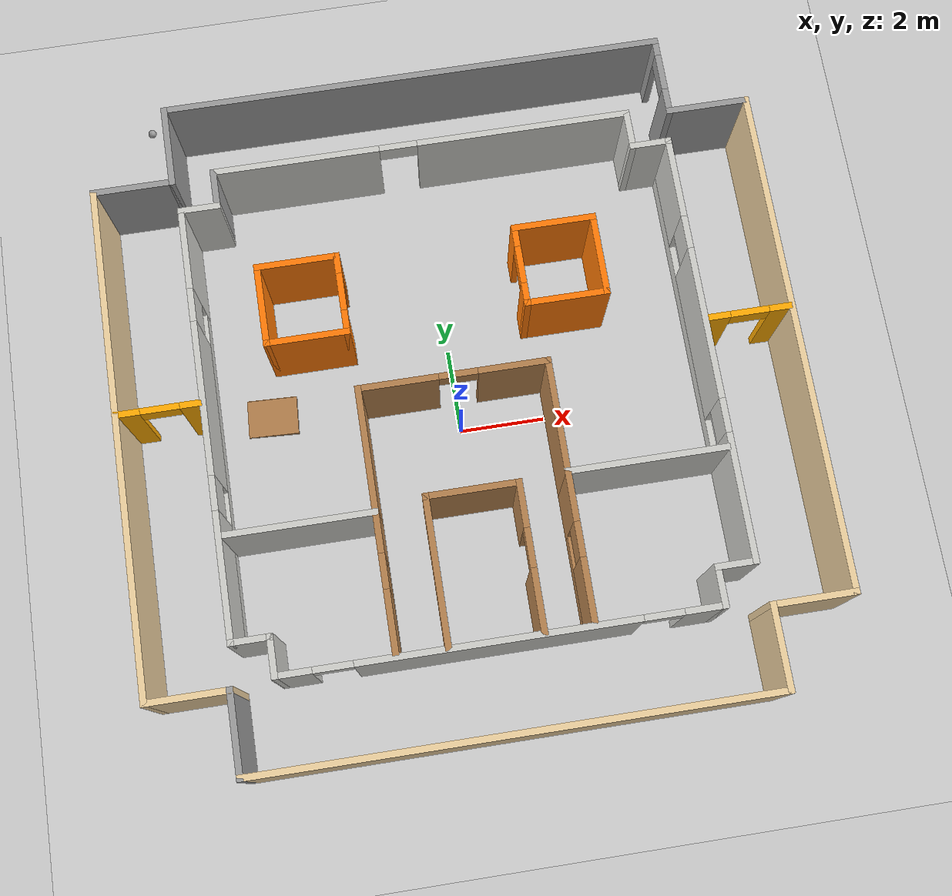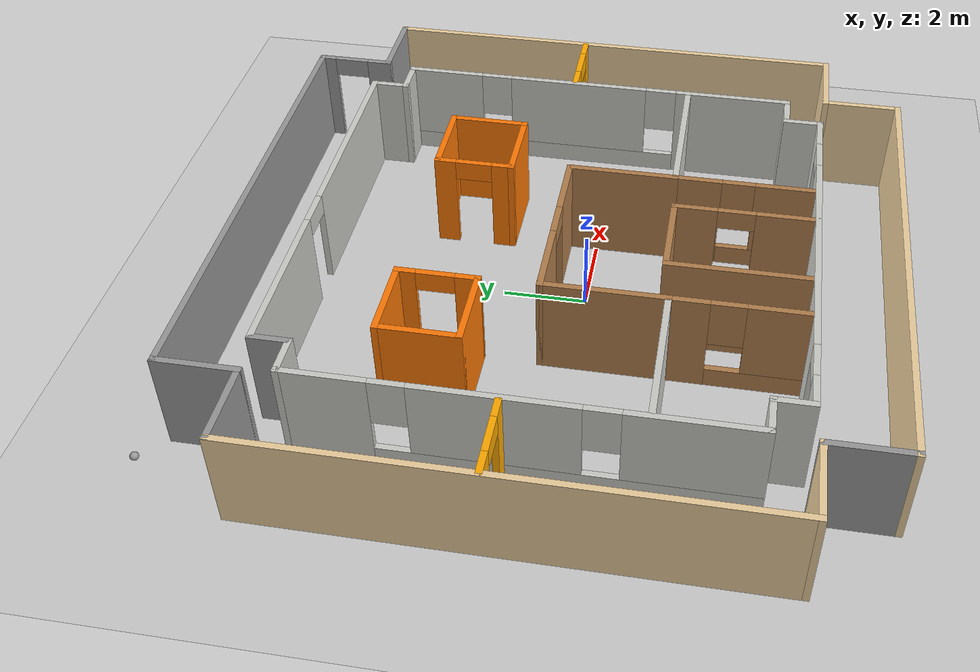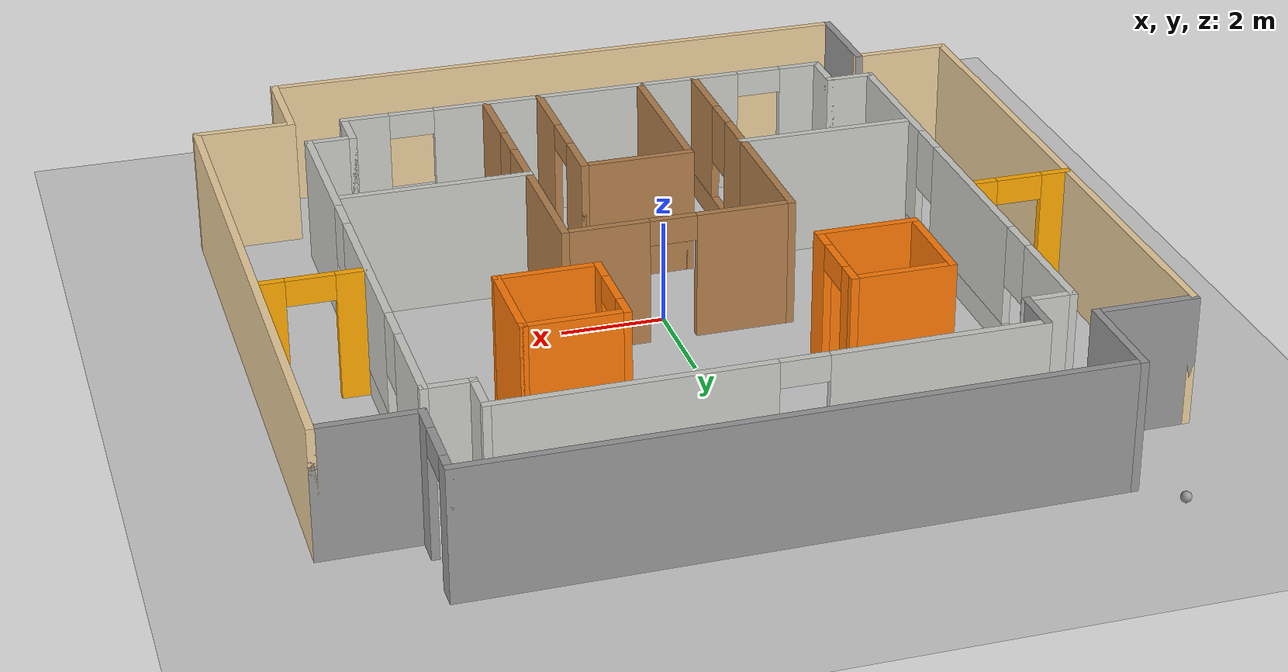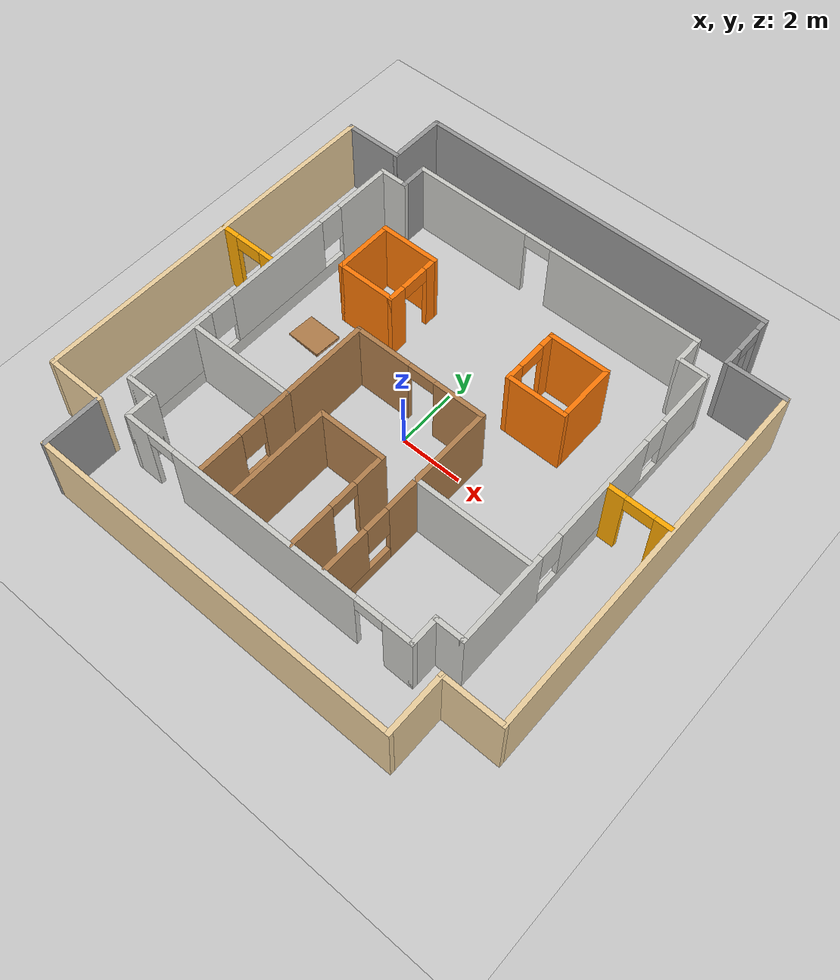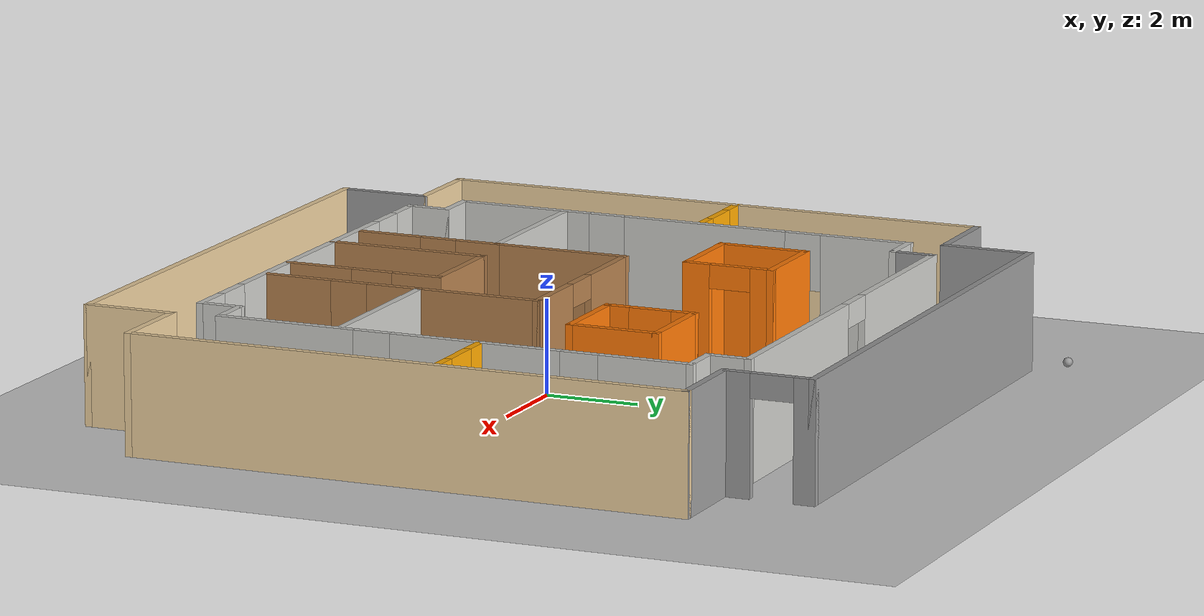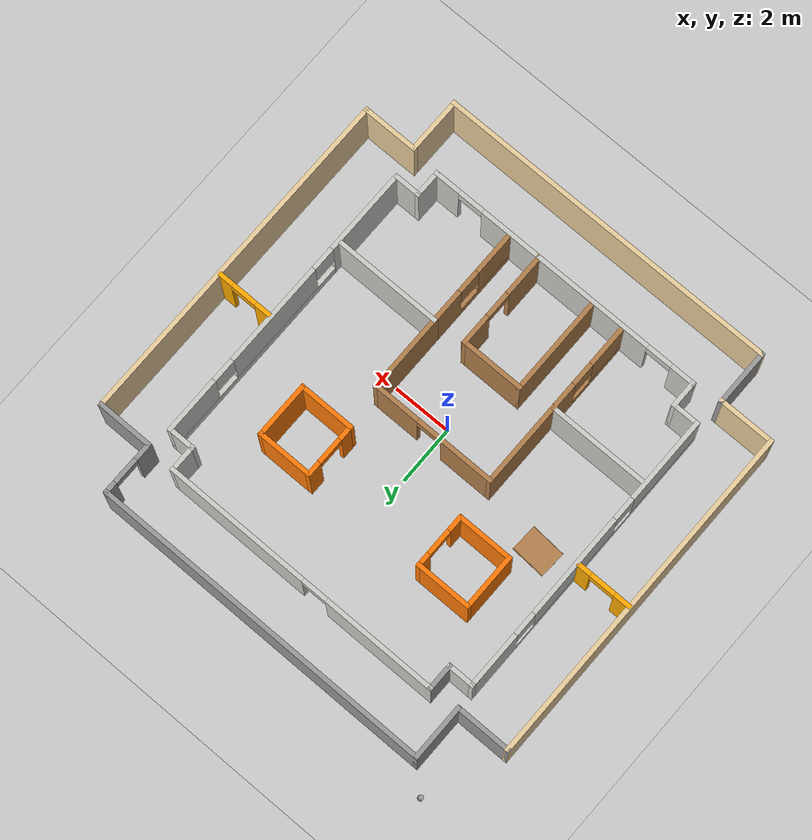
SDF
<sdf version="1.6">
 <world name="default">
  <plugin name="hello_world" filename="libhello_world.so"/>
  <light name="sun" type="directional">
   <pose>0 0 10 0 -0 0</pose>
   <diffuse>0.8 0.8 0.8 1</diffuse>
   <specular>0.2 0.2 0.2 1</specular>
   <attenuation>
    <range>1000</range>
    <constant>0.9</constant>
    <linear>0.01</linear>
    <quadratic>0.001</quadratic>
   </attenuation>
   <direction>-0.5 0.1 -0.9</direction>
  </light>
  <model name="ground_plane">
   <static>1</static>
   <link name="link">
    <collision name="collision">
     <geometry><plane><normal>0 0 1</normal><size>100 100</size></plane></geometry>
     <surface><friction><ode><mu>100</mu><mu2>50</mu2></ode></friction></surface>
    </collision>
    <visual name="visual">
     <cast_shadows>0</cast_shadows>
     <geometry><plane><normal>0 0 1</normal><size>100 100</size></plane></geometry>
     <material>
      <script><uri>file://media/materials/scripts/gazebo.material</uri><name>Gazebo/Grey</name></script>
     </material>
    </visual>
   </link>
  </model>
  <gravity>0 0 -9.8</gravity>
  <magnetic_field>6e-06 2.3e-05 -4.2e-05</magnetic_field>
  <atmosphere type="adiabatic"/>
  <physics name="default_physics" default="0" type="ode">
   <max_step_size>0.001</max_step_size>
   <real_time_factor>1</real_time_factor>
   <real_time_update_rate>1000</real_time_update_rate>
  </physics>
  <scene><ambient>0.4 0.4 0.4 1</ambient><background>0.7 0.7 0.7 1</background><shadows>1</shadows></scene>
  <spherical_coordinates>
   <surface_model>EARTH_WGS84</surface_model>
   <latitude_deg>0</latitude_deg>
   <longitude_deg>0</longitude_deg>
   <elevation>0</elevation>
   <heading_deg>0</heading_deg>
  </spherical_coordinates>
  <model name="Building_Design">
   <pose>0.072259 0.45547 0 0 -0 0</pose>
   <link name="Wall_10">
    <collision name="Wall_10_Collision">
     <geometry><box><size>12 0.15 2.5</size></box></geometry>
     <pose>0 0 1.25 0 -0 0</pose>
    </collision>
    <visual name="Wall_10_Visual">
     <pose>0 0 1.25 0 -0 0</pose>
     <geometry><box><size>12 0.15 2.5</size></box></geometry>
     <material>
      <script><uri>file://media/materials/scripts/gazebo.material</uri><name>Gazebo/Grey</name></script>
      <ambient>0 0 0 1</ambient>
     </material>
     <meta><layer>0</layer></meta>
    </visual>
    <pose>0 7.775 0 0 -0 0</pose>
   </link>
   <link name="Wall_11">
    <pose>5.925 6.85 0 0 0 -1.5708</pose>
    <visual name="Wall_11_Visual_0">
     <pose>-0.772823 0 1.25 0 -0 0</pose>
     <geometry><box><size>0.454353 0.15 2.5</size></box></geometry>
     <material>
      <script><uri>file://media/materials/scripts/gazebo.material</uri><name>Gazebo/Grey</name></script>
      <ambient>0 0 0 1</ambient>
     </material>
     <meta><layer>0</layer></meta>
    </visual>
    <collision name="Wall_11_Collision_0">
     <geometry><box><size>0.454353 0.15 2.5</size></box></geometry>
     <pose>-0.772823 0 1.25 0 -0 0</pose>
    </collision>
    <visual name="Wall_11_Visual_1">
     <pose>0.677177 0 1.25 0 -0 0</pose>
     <geometry><box><size>0.645647 0.15 2.5</size></box></geometry>
     <material>
      <script><uri>file://media/materials/scripts/gazebo.material</uri><name>Gazebo/Grey</name></script>
      <ambient>0 0 0 1</ambient>
     </material>
     <meta><layer>0</layer></meta>
    </visual>
    <collision name="Wall_11_Collision_1">
     <geometry><box><size>0.645647 0.15 2.5</size></box></geometry>
     <pose>0.677177 0 1.25 0 -0 0</pose>
    </collision>
    <visual name="Wall_11_Visual_2">
     <pose>-0.095647 0 2.25 0 -0 0</pose>
     <geometry><box><size>0.9 0.15 0.5</size></box></geometry>
     <material>
      <script><uri>file://media/materials/scripts/gazebo.material</uri><name>Gazebo/Grey</name></script>
      <ambient>0 0 0 1</ambient>
     </material>
     <meta><layer>0</layer></meta>
    </visual>
    <collision name="Wall_11_Collision_2">
     <geometry><box><size>0.9 0.15 0.5</size></box></geometry>
     <pose>-0.095647 0 2.25 0 -0 0</pose>
    </collision>
   </link>
   <link name="Wall_12">
    <collision name="Wall_12_Collision">
     <geometry><box><size>2 0.15 2.5</size></box></geometry>
     <pose>0 0 1.25 0 -0 0</pose>
    </collision>
    <visual name="Wall_12_Visual">
     <pose>0 0 1.25 0 -0 0</pose>
     <geometry><box><size>2 0.15 2.5</size></box></geometry>
     <material>
      <script><uri>file://media/materials/scripts/gazebo.material</uri><name>Gazebo/Grey</name></script>
      <ambient>0 0 0 1</ambient>
     </material>
     <meta><layer>0</layer></meta>
    </visual>
    <pose>6.85 5.925 0 0 -0 0</pose>
   </link>
   <link name="Wall_15">
    <collision name="Wall_15_Collision">
     <geometry><box><size>12 0.15 2.5</size></box></geometry>
     <pose>0 0 1.25 0 -0 0</pose>
    </collision>
    <visual name="Wall_15_Visual">
     <pose>0 0 1.25 0 -0 0</pose>
     <geometry><box><size>12 0.15 2.5</size></box></geometry>
     <material>
      <script><uri>file://media/materials/scripts/gazebo.material</uri><name>Gazebo/Grey</name></script>
      <ambient>0.921569 0.807843 0.615686 1</ambient>
     </material>
     <meta><layer>0</layer></meta>
    </visual>
    <pose>7.775 0 0 0 0 -1.5708</pose>
   </link>
   <link name="Wall_16">
    <collision name="Wall_16_Collision">
     <geometry><box><size>2 0.15 2.5</size></box></geometry>
     <pose>0 0 1.25 0 -0 0</pose>
    </collision>
    <visual name="Wall_16_Visual">
     <pose>0 0 1.25 0 -0 0</pose>
     <geometry><box><size>2 0.15 2.5</size></box></geometry>
     <material>
      <script><uri>file://media/materials/scripts/gazebo.material</uri><name>Gazebo/Grey</name></script>
      <ambient>0.921569 0.807843 0.615686 1</ambient>
     </material>
     <meta><layer>0</layer></meta>
    </visual>
    <pose>6.85 -5.925 0 0 -0 3.14159</pose>
   </link>
   <link name="Wall_18">
    <collision name="Wall_18_Collision">
     <geometry><box><size>2 0.15 2.5</size></box></geometry>
     <pose>0 0 1.25 0 -0 0</pose>
    </collision>
    <visual name="Wall_18_Visual">
     <pose>0 0 1.25 0 -0 0</pose>
     <geometry><box><size>2 0.15 2.5</size></box></geometry>
     <material>
      <script><uri>file://media/materials/scripts/gazebo.material</uri><name>Gazebo/Grey</name></script>
      <ambient>0.921569 0.807843 0.615686 1</ambient>
     </material>
     <meta><layer>0</layer></meta>
    </visual>
    <pose>5.925 -6.85 0 0 0 -1.5708</pose>
   </link>
   <link name="Wall_19">
    <collision name="Wall_19_Collision">
     <geometry><box><size>12 0.15 2.5</size></box></geometry>
     <pose>0 0 1.25 0 -0 0</pose>
    </collision>
    <visual name="Wall_19_Visual">
     <pose>0 0 1.25 0 -0 0</pose>
     <geometry><box><size>12 0.15 2.5</size></box></geometry>
     <material>
      <script><uri>file://media/materials/scripts/gazebo.material</uri><name>Gazebo/Grey</name></script>
      <ambient>0.921569 0.807843 0.615686 1</ambient>
     </material>
     <meta><layer>0</layer></meta>
    </visual>
    <pose>0 -7.775 0 0 -0 3.14159</pose>
   </link>
   <link name="Wall_20">
    <collision name="Wall_20_Collision">
     <geometry><box><size>2 0.15 2.5</size></box></geometry>
     <pose>0 0 1.25 0 -0 0</pose>
    </collision>
    <visual name="Wall_20_Visual">
     <pose>0 0 1.25 0 -0 0</pose>
     <geometry><box><size>2 0.15 2.5</size></box></geometry>
     <material>
      <script><uri>file://media/materials/scripts/gazebo.material</uri><name>Gazebo/Grey</name></script>
      <ambient>1 1 1 1</ambient>
     </material>
     <meta><layer>0</layer></meta>
    </visual>
    <pose>-5.925 -6.85 0 0 -0 1.5708</pose>
   </link>
   <link name="Wall_21">
    <collision name="Wall_21_Collision">
     <geometry><box><size>2 0.15 2.5</size></box></geometry>
     <pose>0 0 1.25 0 -0 0</pose>
    </collision>
    <visual name="Wall_21_Visual">
     <pose>0 0 1.25 0 -0 0</pose>
     <geometry><box><size>2 0.15 2.5</size></box></geometry>
     <material>
      <script><uri>file://media/materials/scripts/gazebo.material</uri><name>Gazebo/Grey</name></script>
      <ambient>0.921569 0.807843 0.615686 1</ambient>
     </material>
     <meta><layer>0</layer></meta>
    </visual>
    <pose>-6.85 -5.925 0 0 -0 3.14159</pose>
   </link>
   <link name="Wall_22">
    <collision name="Wall_22_Collision">
     <geometry><box><size>12 0.15 2.5</size></box></geometry>
     <pose>0 0 1.25 0 -0 0</pose>
    </collision>
    <visual name="Wall_22_Visual">
     <pose>0 0 1.25 0 -0 0</pose>
     <geometry><box><size>12 0.15 2.5</size></box></geometry>
     <material>
      <script><uri>file://media/materials/scripts/gazebo.material</uri><name>Gazebo/Grey</name></script>
      <ambient>0.921569 0.807843 0.615686 1</ambient>
     </material>
     <meta><layer>0</layer></meta>
    </visual>
    <pose>-7.775 0 0 0 -0 1.5708</pose>
   </link>
   <link name="Wall_24">
    <collision name="Wall_24_Collision">
     <geometry><box><size>1 0.15 2.5</size></box></geometry>
     <pose>0 0 1.25 0 -0 0</pose>
    </collision>
    <visual name="Wall_24_Visual">
     <pose>0 0 1.25 0 -0 0</pose>
     <geometry><box><size>1 0.15 2.5</size></box></geometry>
     <material>
      <script><uri>file://media/materials/scripts/gazebo.material</uri><name>Gazebo/Grey</name></script>
      <ambient>1 1 1 1</ambient>
     </material>
     <meta><layer>0</layer></meta>
    </visual>
    <pose>-4.94845 5.59334 0 0 0 -1.5708</pose>
   </link>
   <link name="Wall_25">
    <collision name="Wall_25_Collision">
     <geometry><box><size>1 0.15 2.5</size></box></geometry>
     <pose>0 0 1.25 0 -0 0</pose>
    </collision>
    <visual name="Wall_25_Visual">
     <pose>0 0 1.25 0 -0 0</pose>
     <geometry><box><size>1 0.15 2.5</size></box></geometry>
     <material>
      <script><uri>file://media/materials/scripts/gazebo.material</uri><name>Gazebo/CeilingTiled</name></script>
      <ambient>1 1 1 1</ambient>
     </material>
     <meta><layer>0</layer></meta>
    </visual>
    <pose>-5.37345 5.16834 0 0 -0 3.14159</pose>
   </link>
   <link name="Wall_26">
    <pose>-5.79845 0.118341 0 0 0 -1.5708</pose>
    <visual name="Wall_26_Visual_0">
     <pose>-4.12319 0 1.25 0 -0 0</pose>
     <geometry><box><size>2.00363 0.15 2.5</size></box></geometry>
     <material>
      <script><uri>file://media/materials/scripts/gazebo.material</uri><name>Gazebo/CeilingTiled</name></script>
      <ambient>1 1 1 1</ambient>
     </material>
     <meta><layer>0</layer></meta>
    </visual>
    <collision name="Wall_26_Collision_0">
     <geometry><box><size>2.00363 0.15 2.5</size></box></geometry>
     <pose>-4.12319 0 1.25 0 -0 0</pose>
    </collision>
    <visual name="Wall_26_Visual_1">
     <pose>1.00181 0 0.25 0 -0 0</pose>
     <geometry><box><size>8.24637 0.15 0.5</size></box></geometry>
     <material>
      <script><uri>file://media/materials/scripts/gazebo.material</uri><name>Gazebo/CeilingTiled</name></script>
      <ambient>1 1 1 1</ambient>
     </material>
     <meta><layer>0</layer></meta>
    </visual>
    <collision name="Wall_26_Collision_1">
     <geometry><box><size>8.24637 0.15 0.5</size></box></geometry>
     <pose>1.00181 0 0.25 0 -0 0</pose>
    </collision>
    <visual name="Wall_26_Visual_2">
     <pose>-0.500894 0 1.5 0 -0 0</pose>
     <geometry><box><size>3.64095 0.15 2</size></box></geometry>
     <material>
      <script><uri>file://media/materials/scripts/gazebo.material</uri><name>Gazebo/CeilingTiled</name></script>
      <ambient>1 1 1 1</ambient>
     </material>
     <meta><layer>0</layer></meta>
    </visual>
    <collision name="Wall_26_Collision_2">
     <geometry><box><size>3.64095 0.15 2</size></box></geometry>
     <pose>-0.500894 0 1.5 0 -0 0</pose>
    </collision>
    <visual name="Wall_26_Visual_3">
     <pose>3.62229 0 1.5 0 -0 0</pose>
     <geometry><box><size>3.00542 0.15 2</size></box></geometry>
     <material>
      <script><uri>file://media/materials/scripts/gazebo.material</uri><name>Gazebo/CeilingTiled</name></script>
      <ambient>1 1 1 1</ambient>
     </material>
     <meta><layer>0</layer></meta>
    </visual>
    <collision name="Wall_26_Collision_3">
     <geometry><box><size>3.00542 0.15 2</size></box></geometry>
     <pose>3.62229 0 1.5 0 -0 0</pose>
    </collision>
    <visual name="Wall_26_Visual_4">
     <pose>-2.72137 0 1.9 0 -0 0</pose>
     <geometry><box><size>0.8 0.15 1.2</size></box></geometry>
     <material>
      <script><uri>file://media/materials/scripts/gazebo.material</uri><name>Gazebo/CeilingTiled</name></script>
      <ambient>1 1 1 1</ambient>
     </material>
     <meta><layer>0</layer></meta>
    </visual>
    <collision name="Wall_26_Collision_4">
     <geometry><box><size>0.8 0.15 1.2</size></box></geometry>
     <pose>-2.72137 0 1.9 0 -0 0</pose>
    </collision>
    <visual name="Wall_26_Visual_5">
     <pose>1.71958 0 1.9 0 -0 0</pose>
     <geometry><box><size>0.8 0.15 1.2</size></box></geometry>
     <material>
      <script><uri>file://media/materials/scripts/gazebo.material</uri><name>Gazebo/CeilingTiled</name></script>
      <ambient>1 1 1 1</ambient>
     </material>
     <meta><layer>0</layer></meta>
    </visual>
    <collision name="Wall_26_Collision_5">
     <geometry><box><size>0.8 0.15 1.2</size></box></geometry>
     <pose>1.71958 0 1.9 0 -0 0</pose>
    </collision>
   </link>
   <link name="Wall_27">
    <collision name="Wall_27_Collision">
     <geometry><box><size>1 0.15 2.5</size></box></geometry>
     <pose>0 0 1.25 0 -0 0</pose>
    </collision>
    <visual name="Wall_27_Visual">
     <pose>0 0 1.25 0 -0 0</pose>
     <geometry><box><size>1 0.15 2.5</size></box></geometry>
     <material>
      <script><uri>file://media/materials/scripts/gazebo.material</uri><name>Gazebo/CeilingTiled</name></script>
      <ambient>1 1 1 1</ambient>
     </material>
     <meta><layer>0</layer></meta>
    </visual>
    <pose>-5.37345 -4.93166 0 0 -0 0</pose>
   </link>
   <link name="Wall_28">
    <collision name="Wall_28_Collision">
     <geometry><box><size>1 0.15 2.5</size></box></geometry>
     <pose>0 0 1.25 0 -0 0</pose>
    </collision>
    <visual name="Wall_28_Visual">
     <pose>0 0 1.25 0 -0 0</pose>
     <geometry><box><size>1 0.15 2.5</size></box></geometry>
     <material>
      <script><uri>file://media/materials/scripts/gazebo.material</uri><name>Gazebo/CeilingTiled</name></script>
      <ambient>1 1 1 1</ambient>
     </material>
     <meta><layer>0</layer></meta>
    </visual>
    <pose>-4.94845 -5.35666 0 0 0 -1.5708</pose>
   </link>
   <link name="Wall_29">
    <pose>-0.023448 -5.78166 0 0 -0 0</pose>
    <visual name="Wall_29_Visual_0">
     <pose>-4.55634 0 1.25 0 -0 0</pose>
     <geometry><box><size>0.887326 0.15 2.5</size></box></geometry>
     <material>
      <script><uri>file://media/materials/scripts/gazebo.material</uri><name>Gazebo/CeilingTiled</name></script>
      <ambient>1 1 1 1</ambient>
     </material>
     <meta><layer>0</layer></meta>
    </visual>
    <collision name="Wall_29_Collision_0">
     <geometry><box><size>0.887326 0.15 2.5</size></box></geometry>
     <pose>-4.55634 0 1.25 0 -0 0</pose>
    </collision>
    <visual name="Wall_29_Visual_1">
     <pose>-0.042991 0 1.25 0 -0 0</pose>
     <geometry><box><size>6.33936 0.15 2.5</size></box></geometry>
     <material>
      <script><uri>file://media/materials/scripts/gazebo.material</uri><name>Gazebo/CeilingTiled</name></script>
      <ambient>1 1 1 1</ambient>
     </material>
     <meta><layer>0</layer></meta>
    </visual>
    <collision name="Wall_29_Collision_1">
     <geometry><box><size>6.33936 0.15 2.5</size></box></geometry>
     <pose>-0.042991 0 1.25 0 -0 0</pose>
    </collision>
    <visual name="Wall_29_Visual_2">
     <pose>4.51335 0 1.25 0 -0 0</pose>
     <geometry><box><size>0.973309 0.15 2.5</size></box></geometry>
     <material>
      <script><uri>file://media/materials/scripts/gazebo.material</uri><name>Gazebo/CeilingTiled</name></script>
      <ambient>1 1 1 1</ambient>
     </material>
     <meta><layer>0</layer></meta>
    </visual>
    <collision name="Wall_29_Collision_2">
     <geometry><box><size>0.973309 0.15 2.5</size></box></geometry>
     <pose>4.51335 0 1.25 0 -0 0</pose>
    </collision>
    <visual name="Wall_29_Visual_3">
     <pose>-3.66267 0 2.25 0 -0 0</pose>
     <geometry><box><size>0.9 0.15 0.5</size></box></geometry>
     <material>
      <script><uri>file://media/materials/scripts/gazebo.material</uri><name>Gazebo/CeilingTiled</name></script>
      <ambient>1 1 1 1</ambient>
     </material>
     <meta><layer>0</layer></meta>
    </visual>
    <collision name="Wall_29_Collision_3">
     <geometry><box><size>0.9 0.15 0.5</size></box></geometry>
     <pose>-3.66267 0 2.25 0 -0 0</pose>
    </collision>
    <visual name="Wall_29_Visual_4">
     <pose>3.57669 0 2.25 0 -0 0</pose>
     <geometry><box><size>0.9 0.15 0.5</size></box></geometry>
     <material>
      <script><uri>file://media/materials/scripts/gazebo.material</uri><name>Gazebo/CeilingTiled</name></script>
      <ambient>1 1 1 1</ambient>
     </material>
     <meta><layer>0</layer></meta>
    </visual>
    <collision name="Wall_29_Collision_4">
     <geometry><box><size>0.9 0.15 0.5</size></box></geometry>
     <pose>3.57669 0 2.25 0 -0 0</pose>
    </collision>
   </link>
   <link name="Wall_30">
    <collision name="Wall_30_Collision">
     <geometry><box><size>1 0.15 2.5</size></box></geometry>
     <pose>0 0 1.25 0 -0 0</pose>
    </collision>
    <visual name="Wall_30_Visual">
     <pose>0 0 1.25 0 -0 0</pose>
     <geometry><box><size>1 0.15 2.5</size></box></geometry>
     <material>
      <script><uri>file://media/materials/scripts/gazebo.material</uri><name>Gazebo/CeilingTiled</name></script>
      <ambient>1 1 1 1</ambient>
     </material>
     <meta><layer>0</layer></meta>
    </visual>
    <pose>4.90155 -5.35666 0 0 -0 1.5708</pose>
   </link>
   <link name="Wall_31">
    <collision name="Wall_31_Collision">
     <geometry><box><size>1 0.15 2.5</size></box></geometry>
     <pose>0 0 1.25 0 -0 0</pose>
    </collision>
    <visual name="Wall_31_Visual">
     <pose>0 0 1.25 0 -0 0</pose>
     <geometry><box><size>1 0.15 2.5</size></box></geometry>
     <material>
      <script><uri>file://media/materials/scripts/gazebo.material</uri><name>Gazebo/CeilingTiled</name></script>
      <ambient>1 1 1 1</ambient>
     </material>
     <meta><layer>0</layer></meta>
    </visual>
    <pose>5.32655 -4.93166 0 0 -0 0</pose>
   </link>
   <link name="Wall_32">
    <pose>5.75155 0.118341 0 0 -0 1.5708</pose>
    <visual name="Wall_32_Visual_0">
     <pose>-3.62229 0 1.25 0 -0 0</pose>
     <geometry><box><size>3.00542 0.15 2.5</size></box></geometry>
     <material>
      <script><uri>file://media/materials/scripts/gazebo.material</uri><name>Gazebo/CeilingTiled</name></script>
      <ambient>1 1 1 1</ambient>
     </material>
     <meta><layer>0</layer></meta>
    </visual>
    <collision name="Wall_32_Collision_0">
     <geometry><box><size>3.00542 0.15 2.5</size></box></geometry>
     <pose>-3.62229 0 1.25 0 -0 0</pose>
    </collision>
    <visual name="Wall_32_Visual_1">
     <pose>1.50271 0 0.25 0 -0 0</pose>
     <geometry><box><size>7.24458 0.15 0.5</size></box></geometry>
     <material>
      <script><uri>file://media/materials/scripts/gazebo.material</uri><name>Gazebo/CeilingTiled</name></script>
      <ambient>1 1 1 1</ambient>
     </material>
     <meta><layer>0</layer></meta>
    </visual>
    <collision name="Wall_32_Collision_1">
     <geometry><box><size>7.24458 0.15 0.5</size></box></geometry>
     <pose>1.50271 0 0.25 0 -0 0</pose>
    </collision>
    <visual name="Wall_32_Visual_2">
     <pose>0.500894 0 1.5 0 -0 0</pose>
     <geometry><box><size>3.64095 0.15 2</size></box></geometry>
     <material>
      <script><uri>file://media/materials/scripts/gazebo.material</uri><name>Gazebo/CeilingTiled</name></script>
      <ambient>1 1 1 1</ambient>
     </material>
     <meta><layer>0</layer></meta>
    </visual>
    <collision name="Wall_32_Collision_2">
     <geometry><box><size>3.64095 0.15 2</size></box></geometry>
     <pose>0.500894 0 1.5 0 -0 0</pose>
    </collision>
    <visual name="Wall_32_Visual_3">
     <pose>4.12319 0 1.5 0 -0 0</pose>
     <geometry><box><size>2.00363 0.15 2</size></box></geometry>
     <material>
      <script><uri>file://media/materials/scripts/gazebo.material</uri><name>Gazebo/CeilingTiled</name></script>
      <ambient>1 1 1 1</ambient>
     </material>
     <meta><layer>0</layer></meta>
    </visual>
    <collision name="Wall_32_Collision_3">
     <geometry><box><size>2.00363 0.15 2</size></box></geometry>
     <pose>4.12319 0 1.5 0 -0 0</pose>
    </collision>
    <visual name="Wall_32_Visual_4">
     <pose>-1.71958 0 1.9 0 -0 0</pose>
     <geometry><box><size>0.8 0.15 1.2</size></box></geometry>
     <material>
      <script><uri>file://media/materials/scripts/gazebo.material</uri><name>Gazebo/CeilingTiled</name></script>
      <ambient>1 1 1 1</ambient>
     </material>
     <meta><layer>0</layer></meta>
    </visual>
    <collision name="Wall_32_Collision_4">
     <geometry><box><size>0.8 0.15 1.2</size></box></geometry>
     <pose>-1.71958 0 1.9 0 -0 0</pose>
    </collision>
    <visual name="Wall_32_Visual_5">
     <pose>2.72137 0 1.9 0 -0 0</pose>
     <geometry><box><size>0.8 0.15 1.2</size></box></geometry>
     <material>
      <script><uri>file://media/materials/scripts/gazebo.material</uri><name>Gazebo/CeilingTiled</name></script>
      <ambient>1 1 1 1</ambient>
     </material>
     <meta><layer>0</layer></meta>
    </visual>
    <collision name="Wall_32_Collision_5">
     <geometry><box><size>0.8 0.15 1.2</size></box></geometry>
     <pose>2.72137 0 1.9 0 -0 0</pose>
    </collision>
   </link>
   <link name="Wall_33">
    <collision name="Wall_33_Collision">
     <geometry><box><size>1 0.15 2.5</size></box></geometry>
     <pose>0 0 1.25 0 -0 0</pose>
    </collision>
    <visual name="Wall_33_Visual">
     <pose>0 0 1.25 0 -0 0</pose>
     <geometry><box><size>1 0.15 2.5</size></box></geometry>
     <material>
      <script><uri>file://media/materials/scripts/gazebo.material</uri><name>Gazebo/CeilingTiled</name></script>
      <ambient>1 1 1 1</ambient>
     </material>
     <meta><layer>0</layer></meta>
    </visual>
    <pose>5.32655 5.16834 0 0 -0 3.14159</pose>
   </link>
   <link name="Wall_34">
    <collision name="Wall_34_Collision">
     <geometry><box><size>1 0.15 2.5</size></box></geometry>
     <pose>0 0 1.25 0 -0 0</pose>
    </collision>
    <visual name="Wall_34_Visual">
     <pose>0 0 1.25 0 -0 0</pose>
     <geometry><box><size>1 0.15 2.5</size></box></geometry>
     <material>
      <script><uri>file://media/materials/scripts/gazebo.material</uri><name>Gazebo/CeilingTiled</name></script>
      <ambient>1 1 1 1</ambient>
     </material>
     <meta><layer>0</layer></meta>
    </visual>
    <pose>4.90155 5.59334 0 0 -0 1.5708</pose>
   </link>
   <link name="Wall_35">
    <pose>-0.023448 6.01834 0 0 -0 3.14159</pose>
    <visual name="Wall_35_Visual_0">
     <pose>-2.45256 0 1.25 0 -0 0</pose>
     <geometry><box><size>5.09488 0.15 2.5</size></box></geometry>
     <material>
      <script><uri>file://media/materials/scripts/gazebo.material</uri><name>Gazebo/CeilingTiled</name></script>
      <ambient>1 1 1 1</ambient>
     </material>
     <meta><layer>0</layer></meta>
    </visual>
    <collision name="Wall_35_Collision_0">
     <geometry><box><size>5.09488 0.15 2.5</size></box></geometry>
     <pose>-2.45256 0 1.25 0 -0 0</pose>
    </collision>
    <visual name="Wall_35_Visual_1">
     <pose>2.99744 0 1.25 0 -0 0</pose>
     <geometry><box><size>4.00512 0.15 2.5</size></box></geometry>
     <material>
      <script><uri>file://media/materials/scripts/gazebo.material</uri><name>Gazebo/CeilingTiled</name></script>
      <ambient>1 1 1 1</ambient>
     </material>
     <meta><layer>0</layer></meta>
    </visual>
    <collision name="Wall_35_Collision_1">
     <geometry><box><size>4.00512 0.15 2.5</size></box></geometry>
     <pose>2.99744 0 1.25 0 -0 0</pose>
    </collision>
    <visual name="Wall_35_Visual_2">
     <pose>0.54488 0 2.25 0 -0 0</pose>
     <geometry><box><size>0.9 0.15 0.5</size></box></geometry>
     <material>
      <script><uri>file://media/materials/scripts/gazebo.material</uri><name>Gazebo/CeilingTiled</name></script>
      <ambient>1 1 1 1</ambient>
     </material>
     <meta><layer>0</layer></meta>
    </visual>
    <collision name="Wall_35_Collision_2">
     <geometry><box><size>0.9 0.15 0.5</size></box></geometry>
     <pose>0.54488 0 2.25 0 -0 0</pose>
    </collision>
   </link>
   <link name="Wall_37">
    <pose>-6.82186 0.497565 0 0 -0 0</pose>
    <visual name="Wall_37_Visual_0">
     <pose>-0.70082 0 1.25 0 -0 0</pose>
     <geometry><box><size>0.59836 0.15 2.5</size></box></geometry>
     <material>
      <script><uri>file://media/materials/scripts/gazebo.material</uri><name>Gazebo/Grey</name></script>
      <ambient>1 0.666667 0 1</ambient>
     </material>
     <meta><layer>0</layer></meta>
    </visual>
    <collision name="Wall_37_Collision_0">
     <geometry><box><size>0.59836 0.15 2.5</size></box></geometry>
     <pose>-0.70082 0 1.25 0 -0 0</pose>
    </collision>
    <visual name="Wall_37_Visual_1">
     <pose>0.74918 0 1.25 0 -0 0</pose>
     <geometry><box><size>0.50164 0.15 2.5</size></box></geometry>
     <material>
      <script><uri>file://media/materials/scripts/gazebo.material</uri><name>Gazebo/Grey</name></script>
      <ambient>1 0.666667 0 1</ambient>
     </material>
     <meta><layer>0</layer></meta>
    </visual>
    <collision name="Wall_37_Collision_1">
     <geometry><box><size>0.50164 0.15 2.5</size></box></geometry>
     <pose>0.74918 0 1.25 0 -0 0</pose>
    </collision>
    <visual name="Wall_37_Visual_2">
     <pose>0.04836 0 2.25 0 -0 0</pose>
     <geometry><box><size>0.9 0.15 0.5</size></box></geometry>
     <material>
      <script><uri>file://media/materials/scripts/gazebo.material</uri><name>Gazebo/Grey</name></script>
      <ambient>1 0.666667 0 1</ambient>
     </material>
     <meta><layer>0</layer></meta>
    </visual>
    <collision name="Wall_37_Collision_2">
     <geometry><box><size>0.9 0.15 0.5</size></box></geometry>
     <pose>0.04836 0 2.25 0 -0 0</pose>
    </collision>
   </link>
   <link name="Wall_39">
    <pose>6.77477 0.710487 0 0 -0 0</pose>
    <visual name="Wall_39_Visual_0">
     <pose>-0.716029 0 1.25 0 -0 0</pose>
     <geometry><box><size>0.567942 0.15 2.5</size></box></geometry>
     <material>
      <script><uri>file://media/materials/scripts/gazebo.material</uri><name>Gazebo/Grey</name></script>
      <ambient>1 0.666667 0 1</ambient>
     </material>
     <meta><layer>0</layer></meta>
    </visual>
    <collision name="Wall_39_Collision_0">
     <geometry><box><size>0.567942 0.15 2.5</size></box></geometry>
     <pose>-0.716029 0 1.25 0 -0 0</pose>
    </collision>
    <visual name="Wall_39_Visual_1">
     <pose>0.733971 0 1.25 0 -0 0</pose>
     <geometry><box><size>0.532058 0.15 2.5</size></box></geometry>
     <material>
      <script><uri>file://media/materials/scripts/gazebo.material</uri><name>Gazebo/Grey</name></script>
      <ambient>1 0.666667 0 1</ambient>
     </material>
     <meta><layer>0</layer></meta>
    </visual>
    <collision name="Wall_39_Collision_1">
     <geometry><box><size>0.532058 0.15 2.5</size></box></geometry>
     <pose>0.733971 0 1.25 0 -0 0</pose>
    </collision>
    <visual name="Wall_39_Visual_2">
     <pose>0.017942 0 2.25 0 -0 0</pose>
     <geometry><box><size>0.9 0.15 0.5</size></box></geometry>
     <material>
      <script><uri>file://media/materials/scripts/gazebo.material</uri><name>Gazebo/Grey</name></script>
      <ambient>1 0.666667 0 1</ambient>
     </material>
     <meta><layer>0</layer></meta>
    </visual>
    <collision name="Wall_39_Collision_2">
     <geometry><box><size>0.9 0.15 0.5</size></box></geometry>
     <pose>0.017942 0 2.25 0 -0 0</pose>
    </collision>
   </link>
   <link name="Wall_41">
    <collision name="Wall_41_Collision">
     <geometry><box><size>2 0.15 2.5</size></box></geometry>
     <pose>0 0 1.25 0 -0 0</pose>
    </collision>
    <visual name="Wall_41_Visual">
     <pose>0 0 1.25 0 -0 0</pose>
     <geometry><box><size>2 0.15 2.5</size></box></geometry>
     <material>
      <script><uri>file://media/materials/scripts/gazebo.material</uri><name>Gazebo/Grey</name></script>
      <ambient>0.996078 0.47451 0.0196078 1</ambient>
     </material>
     <meta><layer>0</layer></meta>
    </visual>
    <pose>-4.21843 2.5839 0 0 0 -1.5708</pose>
   </link>
   <link name="Wall_42">
    <collision name="Wall_42_Collision">
     <geometry><box><size>2 0.15 2.5</size></box></geometry>
     <pose>0 0 1.25 0 -0 0</pose>
    </collision>
    <visual name="Wall_42_Visual">
     <pose>0 0 1.25 0 -0 0</pose>
     <geometry><box><size>2 0.15 2.5</size></box></geometry>
     <material>
      <script><uri>file://media/materials/scripts/gazebo.material</uri><name>Gazebo/Grey</name></script>
      <ambient>0.996078 0.47451 0.0196078 1</ambient>
     </material>
     <meta><layer>0</layer></meta>
    </visual>
    <pose>-3.29343 1.6589 0 0 -0 0</pose>
   </link>
   <link name="Wall_43">
    <pose>-2.36843 2.5839 0 0 -0 1.5708</pose>
    <visual name="Wall_43_Visual_0">
     <pose>-0.703554 0 1.25 0 -0 0</pose>
     <geometry><box><size>0.592892 0.15 2.5</size></box></geometry>
     <material>
      <script><uri>file://media/materials/scripts/gazebo.material</uri><name>Gazebo/Grey</name></script>
      <ambient>0.996078 0.47451 0.0196078 1</ambient>
     </material>
     <meta><layer>0</layer></meta>
    </visual>
    <collision name="Wall_43_Collision_0">
     <geometry><box><size>0.592892 0.15 2.5</size></box></geometry>
     <pose>-0.703554 0 1.25 0 -0 0</pose>
    </collision>
    <visual name="Wall_43_Visual_1">
     <pose>0.746446 0 1.25 0 -0 0</pose>
     <geometry><box><size>0.507108 0.15 2.5</size></box></geometry>
     <material>
      <script><uri>file://media/materials/scripts/gazebo.material</uri><name>Gazebo/Grey</name></script>
      <ambient>0.996078 0.47451 0.0196078 1</ambient>
     </material>
     <meta><layer>0</layer></meta>
    </visual>
    <collision name="Wall_43_Collision_1">
     <geometry><box><size>0.507108 0.15 2.5</size></box></geometry>
     <pose>0.746446 0 1.25 0 -0 0</pose>
    </collision>
    <visual name="Wall_43_Visual_2">
     <pose>0.042892 0 2.25 0 -0 0</pose>
     <geometry><box><size>0.9 0.15 0.5</size></box></geometry>
     <material>
      <script><uri>file://media/materials/scripts/gazebo.material</uri><name>Gazebo/Grey</name></script>
      <ambient>0.996078 0.47451 0.0196078 1</ambient>
     </material>
     <meta><layer>0</layer></meta>
    </visual>
    <collision name="Wall_43_Collision_2">
     <geometry><box><size>0.9 0.15 0.5</size></box></geometry>
     <pose>0.042892 0 2.25 0 -0 0</pose>
    </collision>
   </link>
   <link name="Wall_44">
    <collision name="Wall_44_Collision">
     <geometry><box><size>2 0.15 2.5</size></box></geometry>
     <pose>0 0 1.25 0 -0 0</pose>
    </collision>
    <visual name="Wall_44_Visual">
     <pose>0 0 1.25 0 -0 0</pose>
     <geometry><box><size>2 0.15 2.5</size></box></geometry>
     <material>
      <script><uri>file://media/materials/scripts/gazebo.material</uri><name>Gazebo/Grey</name></script>
      <ambient>0.996078 0.47451 0.0196078 1</ambient>
     </material>
     <meta><layer>0</layer></meta>
    </visual>
    <pose>-3.29343 3.5089 0 0 -0 3.14159</pose>
   </link>
   <link name="Wall_46">
    <collision name="Wall_46_Collision">
     <geometry><box><size>2 0.15 2.5</size></box></geometry>
     <pose>0 0 1.25 0 -0 0</pose>
    </collision>
    <visual name="Wall_46_Visual">
     <pose>0 0 1.25 0 -0 0</pose>
     <geometry><box><size>2 0.15 2.5</size></box></geometry>
     <material>
      <script><uri>file://media/materials/scripts/gazebo.material</uri><name>Gazebo/Grey</name></script>
      <ambient>0.996078 0.47451 0.0196078 1</ambient>
     </material>
     <meta><layer>0</layer></meta>
    </visual>
    <pose>2.72924 3.55452 0 0 -0 0</pose>
   </link>
   <link name="Wall_47">
    <collision name="Wall_47_Collision">
     <geometry><box><size>2 0.15 2.5</size></box></geometry>
     <pose>0 0 1.25 0 -0 0</pose>
    </collision>
    <visual name="Wall_47_Visual">
     <pose>0 0 1.25 0 -0 0</pose>
     <geometry><box><size>2 0.15 2.5</size></box></geometry>
     <material>
      <script><uri>file://media/materials/scripts/gazebo.material</uri><name>Gazebo/Grey</name></script>
      <ambient>0.996078 0.47451 0.0196078 1</ambient>
     </material>
     <meta><layer>0</layer></meta>
    </visual>
    <pose>3.65424 2.62952 0 0 0 -1.5708</pose>
   </link>
   <link name="Wall_48">
    <collision name="Wall_48_Collision">
     <geometry><box><size>2 0.15 2.5</size></box></geometry>
     <pose>0 0 1.25 0 -0 0</pose>
    </collision>
    <visual name="Wall_48_Visual">
     <pose>0 0 1.25 0 -0 0</pose>
     <geometry><box><size>2 0.15 2.5</size></box></geometry>
     <material>
      <script><uri>file://media/materials/scripts/gazebo.material</uri><name>Gazebo/Grey</name></script>
      <ambient>0.996078 0.47451 0.0196078 1</ambient>
     </material>
     <meta><layer>0</layer></meta>
    </visual>
    <pose>2.72924 1.70452 0 0 -0 3.14159</pose>
   </link>
   <link name="Wall_49">
    <pose>1.80424 2.62952 0 0 -0 1.5708</pose>
    <visual name="Wall_49_Visual_0">
     <pose>-0.718762 0 1.25 0 -0 0</pose>
     <geometry><box><size>0.562475 0.15 2.5</size></box></geometry>
     <material>
      <script><uri>file://media/materials/scripts/gazebo.material</uri><name>Gazebo/Grey</name></script>
      <ambient>0.996078 0.47451 0.0196078 1</ambient>
     </material>
     <meta><layer>0</layer></meta>
    </visual>
    <collision name="Wall_49_Collision_0">
     <geometry><box><size>0.562475 0.15 2.5</size></box></geometry>
     <pose>-0.718762 0 1.25 0 -0 0</pose>
    </collision>
    <visual name="Wall_49_Visual_1">
     <pose>0.731238 0 1.25 0 -0 0</pose>
     <geometry><box><size>0.537525 0.15 2.5</size></box></geometry>
     <material>
      <script><uri>file://media/materials/scripts/gazebo.material</uri><name>Gazebo/Grey</name></script>
      <ambient>0.996078 0.47451 0.0196078 1</ambient>
     </material>
     <meta><layer>0</layer></meta>
    </visual>
    <collision name="Wall_49_Collision_1">
     <geometry><box><size>0.537525 0.15 2.5</size></box></geometry>
     <pose>0.731238 0 1.25 0 -0 0</pose>
    </collision>
    <visual name="Wall_49_Visual_2">
     <pose>0.012475 0 2.25 0 -0 0</pose>
     <geometry><box><size>0.9 0.15 0.5</size></box></geometry>
     <material>
      <script><uri>file://media/materials/scripts/gazebo.material</uri><name>Gazebo/Grey</name></script>
      <ambient>0.996078 0.47451 0.0196078 1</ambient>
     </material>
     <meta><layer>0</layer></meta>
    </visual>
    <collision name="Wall_49_Collision_2">
     <geometry><box><size>0.9 0.15 0.5</size></box></geometry>
     <pose>0.012475 0 2.25 0 -0 0</pose>
    </collision>
   </link>
   <link name="Wall_54">
    <collision name="Wall_54_Collision">
     <geometry><box><size>3.5 0.15 2.5</size></box></geometry>
     <pose>0 0 1.25 0 -0 0</pose>
    </collision>
    <visual name="Wall_54_Visual">
     <pose>0 0 1.25 0 -0 0</pose>
     <geometry><box><size>3.5 0.15 2.5</size></box></geometry>
     <material>
      <script><uri>file://media/materials/scripts/gazebo.material</uri><name>Gazebo/CeilingTiled</name></script>
      <ambient>0.996078 0.47451 0.0196078 1</ambient>
     </material>
     <meta><layer>0</layer></meta>
    </visual>
    <pose>-3.98826 -2.5746 0 0 -0 0</pose>
   </link>
   <link name="Wall_55">
    <pose>-2.31326 -4.1246 0 0 0 -1.5708</pose>
    <visual name="Wall_55_Visual_0">
     <pose>-1.1257 0 1.25 0 -0 0</pose>
     <geometry><box><size>0.998589 0.15 2.5</size></box></geometry>
     <material>
      <script><uri>file://media/materials/scripts/gazebo.material</uri><name>Gazebo/Wood</name></script>
      <ambient>1 1 1 1</ambient>
     </material>
     <meta><layer>0</layer></meta>
    </visual>
    <collision name="Wall_55_Collision_0">
     <geometry><box><size>0.998589 0.15 2.5</size></box></geometry>
     <pose>-1.1257 0 1.25 0 -0 0</pose>
    </collision>
    <visual name="Wall_55_Visual_1">
     <pose>0.499295 0 0.25 0 -0 0</pose>
     <geometry><box><size>2.25141 0.15 0.5</size></box></geometry>
     <material>
      <script><uri>file://media/materials/scripts/gazebo.material</uri><name>Gazebo/Wood</name></script>
      <ambient>1 1 1 1</ambient>
     </material>
     <meta><layer>0</layer></meta>
    </visual>
    <collision name="Wall_55_Collision_1">
     <geometry><box><size>2.25141 0.15 0.5</size></box></geometry>
     <pose>0.499295 0 0.25 0 -0 0</pose>
    </collision>
    <visual name="Wall_55_Visual_2">
     <pose>0.899295 0 1.5 0 -0 0</pose>
     <geometry><box><size>1.45141 0.15 2</size></box></geometry>
     <material>
      <script><uri>file://media/materials/scripts/gazebo.material</uri><name>Gazebo/Wood</name></script>
      <ambient>1 1 1 1</ambient>
     </material>
     <meta><layer>0</layer></meta>
    </visual>
    <collision name="Wall_55_Collision_2">
     <geometry><box><size>1.45141 0.15 2</size></box></geometry>
     <pose>0.899295 0 1.5 0 -0 0</pose>
    </collision>
    <visual name="Wall_55_Visual_3">
     <pose>-0.226411 0 1.9 0 -0 0</pose>
     <geometry><box><size>0.8 0.15 1.2</size></box></geometry>
     <material>
      <script><uri>file://media/materials/scripts/gazebo.material</uri><name>Gazebo/Wood</name></script>
      <ambient>1 1 1 1</ambient>
     </material>
     <meta><layer>0</layer></meta>
    </visual>
    <collision name="Wall_55_Collision_3">
     <geometry><box><size>0.8 0.15 1.2</size></box></geometry>
     <pose>-0.226411 0 1.9 0 -0 0</pose>
    </collision>
   </link>
   <link name="Wall_61">
    <collision name="Wall_61_Collision">
     <geometry><box><size>3 0.15 2.5</size></box></geometry>
     <pose>0 0 1.25 0 -0 0</pose>
    </collision>
    <visual name="Wall_61_Visual">
     <pose>0 0 1.25 0 -0 0</pose>
     <geometry><box><size>3 0.15 2.5</size></box></geometry>
     <material>
      <script><uri>file://media/materials/scripts/gazebo.material</uri><name>Gazebo/Wood</name></script>
      <ambient>1 1 1 1</ambient>
     </material>
     <meta><layer>0</layer></meta>
    </visual>
    <pose>-2.31326 -1.1496 0 0 -0 1.5708</pose>
   </link>
   <link name="Wall_68">
    <pose>-0.138259 0.275397 0 0 -0 0</pose>
    <visual name="Wall_68_Visual_0">
     <pose>-1.29128 0 1.25 0 -0 0</pose>
     <geometry><box><size>1.91745 0.15 2.5</size></box></geometry>
     <material>
      <script><uri>file://media/materials/scripts/gazebo.material</uri><name>Gazebo/Wood</name></script>
      <ambient>1 1 1 1</ambient>
     </material>
     <meta><layer>0</layer></meta>
    </visual>
    <collision name="Wall_68_Collision_0">
     <geometry><box><size>1.91745 0.15 2.5</size></box></geometry>
     <pose>-1.29128 0 1.25 0 -0 0</pose>
    </collision>
    <visual name="Wall_68_Visual_1">
     <pose>1.40872 0 1.25 0 -0 0</pose>
     <geometry><box><size>1.68255 0.15 2.5</size></box></geometry>
     <material>
      <script><uri>file://media/materials/scripts/gazebo.material</uri><name>Gazebo/Wood</name></script>
      <ambient>1 1 1 1</ambient>
     </material>
     <meta><layer>0</layer></meta>
    </visual>
    <collision name="Wall_68_Collision_1">
     <geometry><box><size>1.68255 0.15 2.5</size></box></geometry>
     <pose>1.40872 0 1.25 0 -0 0</pose>
    </collision>
    <visual name="Wall_68_Visual_2">
     <pose>0.117446 0 2.25 0 -0 0</pose>
     <geometry><box><size>0.9 0.15 0.5</size></box></geometry>
     <material>
      <script><uri>file://media/materials/scripts/gazebo.material</uri><name>Gazebo/Wood</name></script>
      <ambient>1 1 1 1</ambient>
     </material>
     <meta><layer>0</layer></meta>
    </visual>
    <collision name="Wall_68_Collision_2">
     <geometry><box><size>0.9 0.15 0.5</size></box></geometry>
     <pose>0.117446 0 2.25 0 -0 0</pose>
    </collision>
   </link>
   <link name="Wall_69">
    <collision name="Wall_69_Collision">
     <geometry><box><size>2.75 0.15 2.5</size></box></geometry>
     <pose>0 0 1.25 0 -0 0</pose>
    </collision>
    <visual name="Wall_69_Visual">
     <pose>0 0 1.25 0 -0 0</pose>
     <geometry><box><size>2.75 0.15 2.5</size></box></geometry>
     <material>
      <script><uri>file://media/materials/scripts/gazebo.material</uri><name>Gazebo/Wood</name></script>
      <ambient>1 1 1 1</ambient>
     </material>
     <meta><layer>0</layer></meta>
    </visual>
    <pose>2.03674 -1.0246 0 0 0 -1.5708</pose>
   </link>
   <link name="Wall_71">
    <pose>2.03674 -3.9996 0 0 0 -1.5708</pose>
    <visual name="Wall_71_Visual_0">
     <pose>-1.14319 0 1.25 0 -0 0</pose>
     <geometry><box><size>1.21361 0.15 2.5</size></box></geometry>
     <material>
      <script><uri>file://media/materials/scripts/gazebo.material</uri><name>Gazebo/Wood</name></script>
      <ambient>1 1 1 1</ambient>
     </material>
     <meta><layer>0</layer></meta>
    </visual>
    <collision name="Wall_71_Collision_0">
     <geometry><box><size>1.21361 0.15 2.5</size></box></geometry>
     <pose>-1.14319 0 1.25 0 -0 0</pose>
    </collision>
    <visual name="Wall_71_Visual_1">
     <pose>0.606805 0 0.25 0 -0 0</pose>
     <geometry><box><size>2.28639 0.15 0.5</size></box></geometry>
     <material>
      <script><uri>file://media/materials/scripts/gazebo.material</uri><name>Gazebo/Wood</name></script>
      <ambient>1 1 1 1</ambient>
     </material>
     <meta><layer>0</layer></meta>
    </visual>
    <collision name="Wall_71_Collision_1">
     <geometry><box><size>2.28639 0.15 0.5</size></box></geometry>
     <pose>0.606805 0 0.25 0 -0 0</pose>
    </collision>
    <visual name="Wall_71_Visual_2">
     <pose>1.0068 0 1.5 0 -0 0</pose>
     <geometry><box><size>1.48639 0.15 2</size></box></geometry>
     <material>
      <script><uri>file://media/materials/scripts/gazebo.material</uri><name>Gazebo/Wood</name></script>
      <ambient>1 1 1 1</ambient>
     </material>
     <meta><layer>0</layer></meta>
    </visual>
    <collision name="Wall_71_Collision_2">
     <geometry><box><size>1.48639 0.15 2</size></box></geometry>
     <pose>1.0068 0 1.5 0 -0 0</pose>
    </collision>
    <visual name="Wall_71_Visual_3">
     <pose>-0.136391 0 1.9 0 -0 0</pose>
     <geometry><box><size>0.8 0.15 1.2</size></box></geometry>
     <material>
      <script><uri>file://media/materials/scripts/gazebo.material</uri><name>Gazebo/Wood</name></script>
      <ambient>1 1 1 1</ambient>
     </material>
     <meta><layer>0</layer></meta>
    </visual>
    <collision name="Wall_71_Collision_3">
     <geometry><box><size>0.8 0.15 1.2</size></box></geometry>
     <pose>-0.136391 0 1.9 0 -0 0</pose>
    </collision>
   </link>
   <link name="Wall_73">
    <collision name="Wall_73_Collision">
     <geometry><box><size>3.75 0.15 2.5</size></box></geometry>
     <pose>0 0 1.25 0 -0 0</pose>
    </collision>
    <visual name="Wall_73_Visual">
     <pose>0 0 1.25 0 -0 0</pose>
     <geometry><box><size>3.75 0.15 2.5</size></box></geometry>
     <material>
      <script><uri>file://media/materials/scripts/gazebo.material</uri><name>Gazebo/CeilingTiled</name></script>
      <ambient>1 1 1 1</ambient>
     </material>
     <meta><layer>0</layer></meta>
    </visual>
    <pose>3.83674 -2.3246 0 0 -0 0</pose>
   </link>
   <link name="Wall_75">
    <collision name="Wall_75_Collision">
     <geometry><box><size>3.5 0.15 2.5</size></box></geometry>
     <pose>0 0 1.25 0 -0 0</pose>
    </collision>
    <visual name="Wall_75_Visual">
     <pose>0 0 1.25 0 -0 0</pose>
     <geometry><box><size>3.5 0.15 2.5</size></box></geometry>
     <material>
      <script><uri>file://media/materials/scripts/gazebo.material</uri><name>Gazebo/Wood</name></script>
      <ambient>1 1 1 1</ambient>
     </material>
     <meta><layer>0</layer></meta>
    </visual>
    <pose>-1.17157 -4.07714 0 0 -0 1.5708</pose>
   </link>
   <link name="Wall_76">
    <collision name="Wall_76_Collision">
     <geometry><box><size>2.25 0.15 2.5</size></box></geometry>
     <pose>0 0 1.25 0 -0 0</pose>
    </collision>
    <visual name="Wall_76_Visual">
     <pose>0 0 1.25 0 -0 0</pose>
     <geometry><box><size>2.25 0.15 2.5</size></box></geometry>
     <material>
      <script><uri>file://media/materials/scripts/gazebo.material</uri><name>Gazebo/Wood</name></script>
      <ambient>1 1 1 1</ambient>
     </material>
     <meta><layer>0</layer></meta>
    </visual>
    <pose>-0.121569 -2.40214 0 0 -0 0</pose>
   </link>
   <link name="Wall_77">
    <pose>0.928431 -4.07714 0 0 0 -1.5708</pose>
    <visual name="Wall_77_Visual_0">
     <pose>-1.19822 0 1.25 0 -0 0</pose>
     <geometry><box><size>1.10356 0.15 2.5</size></box></geometry>
     <material>
      <script><uri>file://media/materials/scripts/gazebo.material</uri><name>Gazebo/Wood</name></script>
      <ambient>1 1 1 1</ambient>
     </material>
     <meta><layer>0</layer></meta>
    </visual>
    <collision name="Wall_77_Collision_0">
     <geometry><box><size>1.10356 0.15 2.5</size></box></geometry>
     <pose>-1.19822 0 1.25 0 -0 0</pose>
    </collision>
    <visual name="Wall_77_Visual_1">
     <pose>1.00178 0 1.25 0 -0 0</pose>
     <geometry><box><size>1.49644 0.15 2.5</size></box></geometry>
     <material>
      <script><uri>file://media/materials/scripts/gazebo.material</uri><name>Gazebo/Wood</name></script>
      <ambient>1 1 1 1</ambient>
     </material>
     <meta><layer>0</layer></meta>
    </visual>
    <collision name="Wall_77_Collision_1">
     <geometry><box><size>1.49644 0.15 2.5</size></box></geometry>
     <pose>1.00178 0 1.25 0 -0 0</pose>
    </collision>
    <visual name="Wall_77_Visual_2">
     <pose>-0.196437 0 2.25 0 -0 0</pose>
     <geometry><box><size>0.9 0.15 0.5</size></box></geometry>
     <material>
      <script><uri>file://media/materials/scripts/gazebo.material</uri><name>Gazebo/Wood</name></script>
      <ambient>1 1 1 1</ambient>
     </material>
     <meta><layer>0</layer></meta>
    </visual>
    <collision name="Wall_77_Collision_2">
     <geometry><box><size>0.9 0.15 0.5</size></box></geometry>
     <pose>-0.196437 0 2.25 0 -0 0</pose>
    </collision>
   </link>
   <link name="Wall_8">
    <collision name="Wall_8_Collision">
     <geometry><box><size>2 0.15 2.5</size></box></geometry>
     <pose>0 0 1.25 0 -0 0</pose>
    </collision>
    <visual name="Wall_8_Visual">
     <pose>0 0 1.25 0 -0 0</pose>
     <geometry><box><size>2 0.15 2.5</size></box></geometry>
     <material>
      <script><uri>file://media/materials/scripts/gazebo.material</uri><name>Gazebo/Grey</name></script>
      <ambient>0 0 0 1</ambient>
     </material>
     <meta><layer>0</layer></meta>
    </visual>
    <pose>-6.85 5.925 0 0 -0 0</pose>
   </link>
   <link name="Wall_9">
    <collision name="Wall_9_Collision">
     <geometry><box><size>2 0.15 2.5</size></box></geometry>
     <pose>0 0 1.25 0 -0 0</pose>
    </collision>
    <visual name="Wall_9_Visual">
     <pose>0 0 1.25 0 -0 0</pose>
     <geometry><box><size>2 0.15 2.5</size></box></geometry>
     <material>
      <script><uri>file://media/materials/scripts/gazebo.material</uri><name>Gazebo/Grey</name></script>
      <ambient>0 0 0 1</ambient>
     </material>
     <meta><layer>0</layer></meta>
    </visual>
    <pose>-5.925 6.85 0 0 -0 1.5708</pose>
   </link>
   <static>1</static>
  </model>
  <model name="bookshelf">
   <static>1</static>
   <link name="link">
    <inertial><mass>1</mass></inertial>
    <collision name="back">
     <pose>0 0.005 0.6 0 -0 0</pose>
     <geometry><box><size>0.9 0.01 1.2</size></box></geometry>
    </collision>
    <visual name="visual1">
     <pose>0 0.005 0.6 0 -0 0</pose>
     <geometry><box><size>0.9 0.01 1.2</size></box></geometry>
     <material>
      <script><uri>file://media/materials/scripts/gazebo.material</uri><name>Gazebo/Wood</name></script>
     </material>
    </visual>
    <collision name="left_side">
     <pose>0.45 -0.195 0.6 0 -0 0</pose>
     <geometry><box><size>0.02 0.4 1.2</size></box></geometry>
    </collision>
    <visual name="visual2">
     <pose>0.45 -0.195 0.6 0 -0 0</pose>
     <geometry><box><size>0.02 0.4 1.2</size></box></geometry>
     <material>
      <script><uri>file://media/materials/scripts/gazebo.material</uri><name>Gazebo/Wood</name></script>
     </material>
    </visual>
    <collision name="right_side">
     <pose>-0.45 -0.195 0.6 0 -0 0</pose>
     <geometry><box><size>0.02 0.4 1.2</size></box></geometry>
    </collision>
    <visual name="visual3">
     <pose>-0.45 -0.195 0.6 0 -0 0</pose>
     <geometry><box><size>0.02 0.4 1.2</size></box></geometry>
     <material>
      <script><uri>file://media/materials/scripts/gazebo.material</uri><name>Gazebo/Wood</name></script>
     </material>
    </visual>
    <collision name="bottom">
     <pose>0 -0.195 0.03 0 -0 0</pose>
     <geometry><box><size>0.88 0.4 0.06</size></box></geometry>
    </collision>
    <visual name="visual4">
     <pose>0 -0.195 0.03 0 -0 0</pose>
     <geometry><box><size>0.88 0.4 0.06</size></box></geometry>
     <material>
      <script><uri>file://media/materials/scripts/gazebo.material</uri><name>Gazebo/Wood</name></script>
     </material>
    </visual>
    <collision name="top">
     <pose>0 -0.195 1.19 0 -0 0</pose>
     <geometry><box><size>0.88 0.4 0.02</size></box></geometry>
    </collision>
    <visual name="visual5">
     <pose>0 -0.195 1.19 0 -0 0</pose>
     <geometry><box><size>0.88 0.4 0.02</size></box></geometry>
     <material>
      <script><uri>file://media/materials/scripts/gazebo.material</uri><name>Gazebo/Wood</name></script>
     </material>
    </visual>
    <collision name="low_shelf">
     <pose>0 -0.195 0.43 0 -0 0</pose>
     <geometry><box><size>0.88 0.4 0.02</size></box></geometry>
    </collision>
    <visual name="visual6">
     <pose>0 -0.195 0.43 0 -0 0</pose>
     <geometry><box><size>0.88 0.4 0.02</size></box></geometry>
     <material>
      <script><uri>file://media/materials/scripts/gazebo.material</uri><name>Gazebo/Wood</name></script>
     </material>
    </visual>
    <collision name="high_shelf">
     <pose>0 -0.195 0.8 0 -0 0</pose>
     <geometry><box><size>0.88 0.4 0.02</size></box></geometry>
    </collision>
    <visual name="visual7">
     <pose>0 -0.195 0.8 0 -0 0</pose>
     <geometry><box><size>0.88 0.4 0.02</size></box></geometry>
     <material>
      <script><uri>file://media/materials/scripts/gazebo.material</uri><name>Gazebo/Wood</name></script>
     </material>
    </visual>
   </link>
   <pose>-5.02319 1.06931 0 1.514 0 1.514</pose>
  </model>
  <model name="my_ball">
   <link name="link_0">
    <inertial>
     <mass>1</mass>
     <inertia><ixx>0.1</ixx><ixy>0</ixy><ixz>0</ixz><iyy>0.1</iyy><iyz>0</iyz><izz>0.1</izz></inertia>
    </inertial>
    <visual name="visual">
     <geometry><sphere><radius>0.1</radius></sphere></geometry>
     <material>
      <lighting>1</lighting>
      <script><uri>file://media/materials/scripts/gazebo.material</uri><name>Gazebo/Grey</name></script>
      <shader type="pixel"><normal_map>__default__</normal_map></shader>
      <ambient>1 1 1 1</ambient>
      <diffuse>1 1 1 1</diffuse>
      <specular>1 1 1 1</specular>
      <emissive>1 1 1 1</emissive>
     </material>
    </visual>
    <collision name="collision">
     <geometry><sphere><radius>0.1</radius></sphere></geometry>
     <surface>
      <friction>
       <ode><mu>1</mu><mu2>1</mu2><fdir1>0 0 0</fdir1><slip1>0</slip1><slip2>0</slip2></ode>
       <torsional>
        <coefficient>1</coefficient>
        <patch_radius>0</patch_radius>
        <surface_radius>0</surface_radius>
        <use_patch_radius>1</use_patch_radius>
        <ode><slip>0</slip></ode>
       </torsional>
      </friction>
      <bounce><restitution_coefficient>0</restitution_coefficient><threshold>1e+06</threshold></bounce>
      <contact>
       <collide_without_contact>0</collide_without_contact>
       <collide_without_contact_bitmask>1</collide_without_contact_bitmask>
       <collide_bitmask>1</collide_bitmask>
       <ode>
        <soft_cfm>0</soft_cfm>
        <soft_erp>0.2</soft_erp>
        <kp>1e+13</kp>
        <kd>1</kd>
        <max_vel>0.01</max_vel>
        <min_depth>0</min_depth>
       </ode>
       <bullet>
        <split_impulse>1</split_impulse>
        <split_impulse_penetration_threshold>-0.01</split_impulse_penetration_threshold>
        <soft_cfm>0</soft_cfm>
        <soft_erp>0.2</soft_erp>
        <kp>1e+13</kp>
        <kd>1</kd>
       </bullet>
      </contact>
     </surface>
    </collision>
   </link>
   <static>0</static>
   <pose>-6.53798 8.86434 0.1 0 -0 0</pose>
  </model>
 </world>
</sdf>
